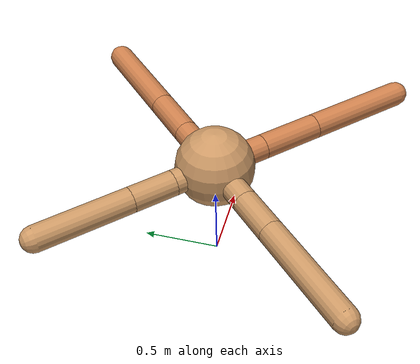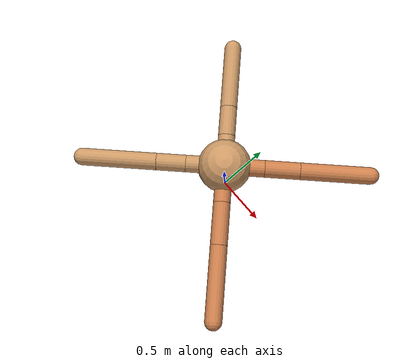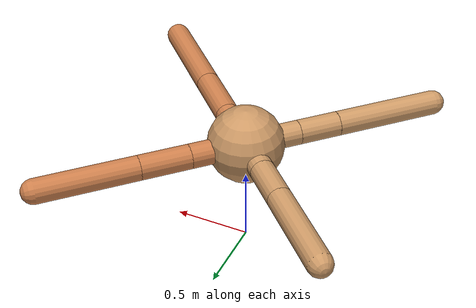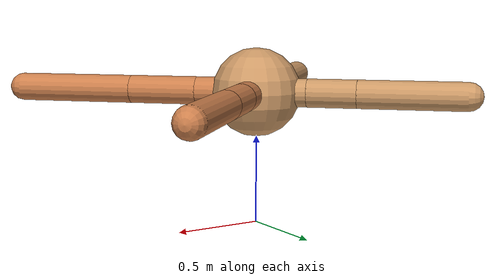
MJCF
<mujoco model="ant">
  <compiler angle="degree" coordinate="local" inertiafromgeom="true" />
  <option integrator="RK4" timestep="0.01" />
  <custom>
    <numeric data="0.0 0.0 0.55 1.0 0.0 0.0 0.0 0.0 1.0 0.0 -1.0 0.0 -1.0 0.0 1.0" name="init_qpos" />
  </custom>
  <default>
    <joint armature="1" damping="1" limited="true" />
    <geom conaffinity="0" condim="3" density="5.0" friction="1.5 0.1 0.1" margin="0.01" rgba="0.8 0.6 0.4 1" />
  </default>
  <worldbody>
    <body name="torso" pos="0 0 0.75">
      <geom name="torso_geom" pos="0 0 0" size="0.25" type="sphere" />

      <body name="front_left_leg" pos="0 0 0">
        <geom fromto="0.0 0.0 0.0 0.2636058023139471 0.2636058023139471 0.0" name="aux_1_geom" size="0.08" type="capsule" rgba=".8 .5 .3 1" />
        <body name="aux_1" pos="0.2636058023139471 0.2636058023139471 0.0">
          <joint axis="0 0 1" name="hip_1" pos="0.0 0.0 0.0" range="-40 40" type="hinge" />
          <geom fromto="0.0 0.0 0.0 0.23182069779821934 0.23182069779821934 0.0" name="left_leg_geom" size="0.08" type="capsule" rgba=".8 .5 .3 1" />
          <body pos="0.23182069779821934 0.23182069779821934 0.0" name="front_left_foot">
            <joint axis="-1 1 0" name="ankle_1" pos="0.0 0.0 0.0" range="30 100" type="hinge" />
            <geom fromto="0.0 0.0 0.0 0.461569679750928 0.461569679750928 0.0" name="left_ankle_geom" size="0.08" type="capsule" rgba=".8 .5 .3 1" />
          </body>
        </body>
      </body>
      <body name="front_right_leg" pos="0 0 0">
        <geom fromto="0.0 0.0 0.0 -0.20518556879794173 0.20518556879794173 0.0" name="aux_2_geom" size="0.08" type="capsule" />
        <body name="aux_2" pos="-0.20518556879794173 0.20518556879794173 0.0">
          <joint axis="0 0 1" name="hip_2" pos="0.0 0.0 0.0" range="-40 40" type="hinge" />
          <geom fromto="0.0 0.0 0.0 -0.19646276188952505 0.19646276188952505 0.0" name="right_leg_geom" size="0.08" type="capsule" />
          <body pos="-0.19646276188952505 0.19646276188952505 0.0" name="front_right_foot">
            <joint axis="1 1 0" name="ankle_2" pos="0.0 0.0 0.0" range="-100 -30" type="hinge" />
            <geom fromto="0.0 0.0 0.0 -0.42323693917354666 0.42323693917354666 0.0" name="right_ankle_geom" size="0.08" type="capsule" />
          </body>
        </body>
      </body>
      <body name="left_back_leg" pos="0 0 0">
        <geom fromto="0.0 0.0 0.0 -0.2530159269194924 -0.2530159269194924 0.0" name="aux_3_geom" size="0.08" type="capsule" />
        <body name="aux_3" pos="-0.2530159269194924 -0.2530159269194924 0.0">
          <joint axis="0 0 1" name="hip_3" pos="0.0 0.0 0.0" range="-40 40" type="hinge" />
          <geom fromto="0.0 0.0 0.0 -0.19347968277852765 -0.19347968277852765 0.0" name="back_leg_geom" size="0.08" type="capsule" />
          <body pos="-0.19347968277852765 -0.19347968277852765 0.0" name="left_back_foot">
            <joint axis="-1 1 0" name="ankle_3" pos="0.0 0.0 0.0" range="-100 -30" type="hinge" />
            <geom fromto="0.0 0.0 0.0 -0.49056219724930195 -0.49056219724930195 0.0" name="third_ankle_geom" size="0.08" type="capsule" />
          </body>
        </body>
      </body>
      <body name="right_back_leg" pos="0 0 0">
        <geom fromto="0.0 0.0 0.0 0.24474181216061172 -0.24474181216061172 0.0" name="aux_4_geom" size="0.08" type="capsule" rgba=".8 .5 .3 1" />
        <body name="aux_4" pos="0.24474181216061172 -0.24474181216061172 0.0">
          <joint axis="0 0 1" name="hip_4" pos="0.0 0.0 0.0" range="-40 40" type="hinge" />
          <geom fromto="0.0 0.0 0.0 0.27766555394089426 -0.27766555394089426 0.0" name="rightback_leg_geom" size="0.08" type="capsule" rgba=".8 .5 .3 1" />
          <body pos="0.27766555394089426 -0.27766555394089426 0.0" name="right_back_foot">
            <joint axis="1 1 0" name="ankle_4" pos="0.0 0.0 0.0" range="30 100" type="hinge" />
            <geom fromto="0.0 0.0 0.0 0.4791229211232286 -0.4791229211232286 0.0" name="fourth_ankle_geom" size="0.08" type="capsule" rgba=".8 .5 .3 1" />
          </body>
        </body>
      </body>
    </body>
  </worldbody>
  <actuator>
    <motor ctrllimited="true" ctrlrange="-1.0 1.0" joint="hip_4" gear="150" />
    <motor ctrllimited="true" ctrlrange="-1.0 1.0" joint="ankle_4" gear="150" />
    <motor ctrllimited="true" ctrlrange="-1.0 1.0" joint="hip_1" gear="150" />
    <motor ctrllimited="true" ctrlrange="-1.0 1.0" joint="ankle_1" gear="150" />
    <motor ctrllimited="true" ctrlrange="-1.0 1.0" joint="hip_2" gear="150" />
    <motor ctrllimited="true" ctrlrange="-1.0 1.0" joint="ankle_2" gear="150" />
    <motor ctrllimited="true" ctrlrange="-1.0 1.0" joint="hip_3" gear="150" />
    <motor ctrllimited="true" ctrlrange="-1.0 1.0" joint="ankle_3" gear="150" />
  </actuator>
</mujoco>
